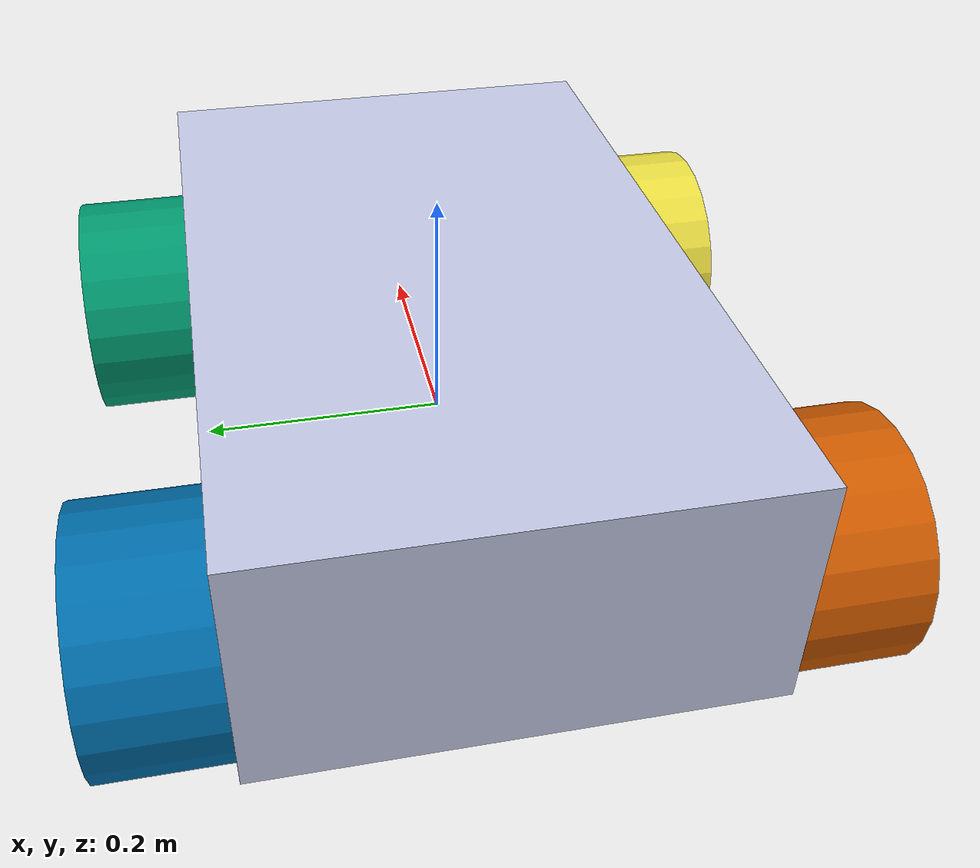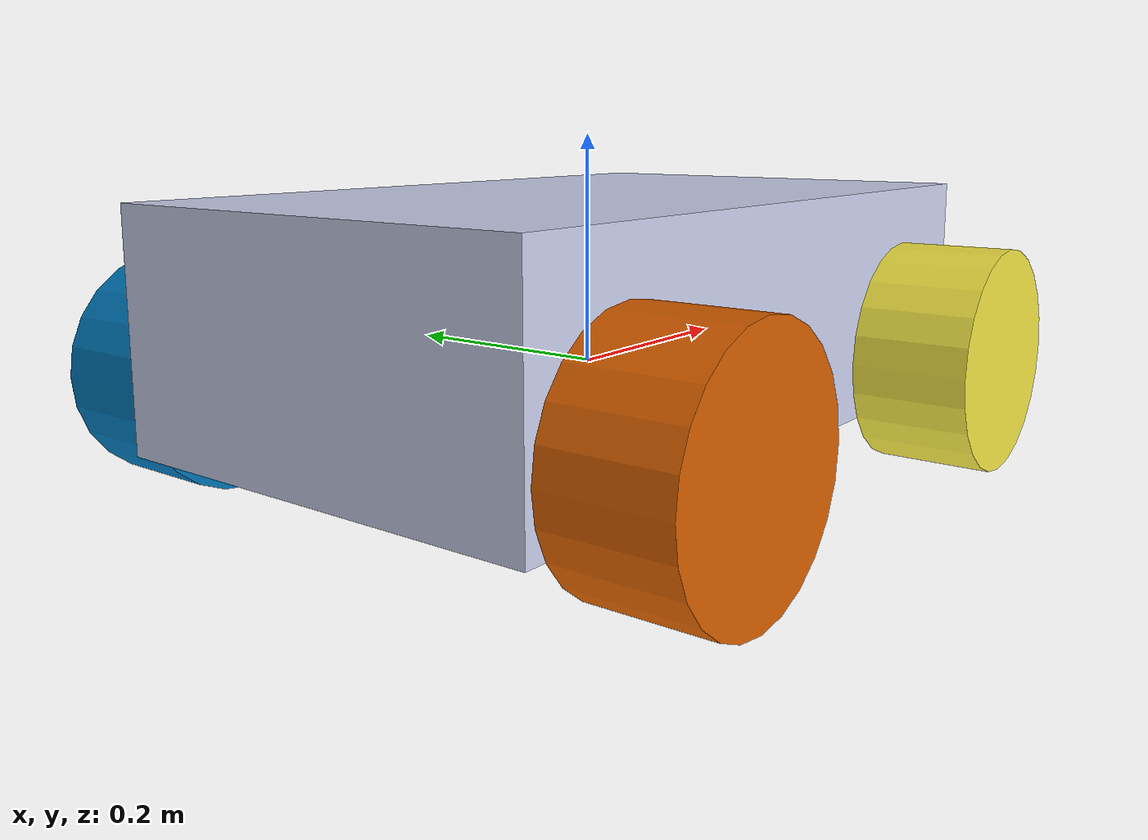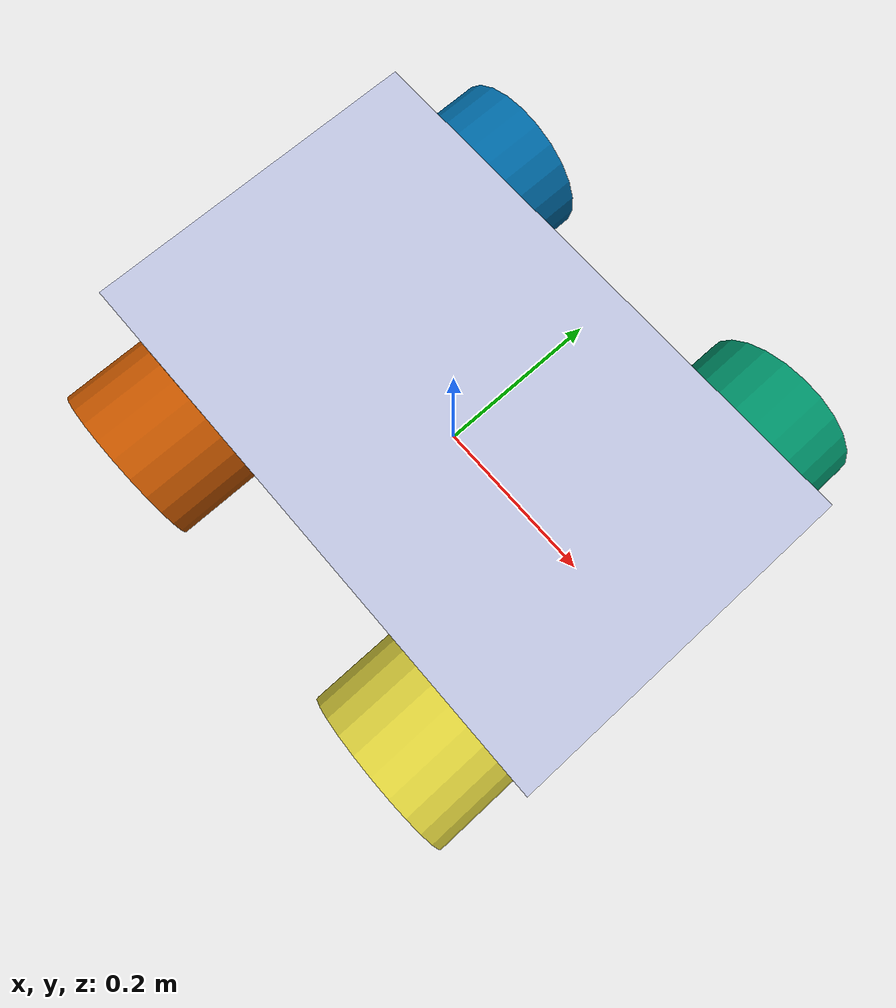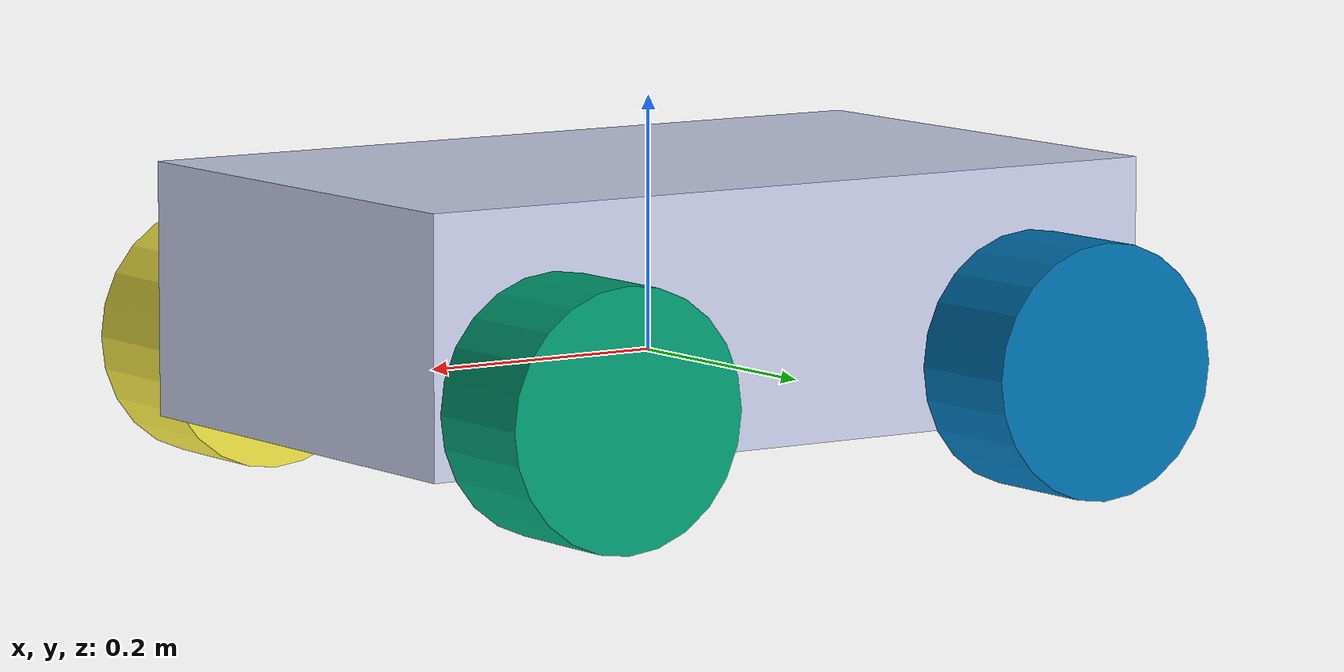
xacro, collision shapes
<?xml version="1.0"?>
<robot xmlns:xacro="http://ros.org/wiki/xacro">

    <xacro:include filename="macros.xacro"/>

    <link name="base_link">

    </link>

    <!-- CHASSIS -->

    <joint name="chassis_joint" type="fixed">
        <parent link="base_link"/>
        <child link="chassis"/>
        <origin xyz="0 0 0"/>
    </joint>

    <link name="chassis">
        <visual>
            <origin xyz="0 0 0" rpy="1.5707963267949 0 3.14"/>
            <geometry>
                <mesh filename="file:///$(find robot_description)/meshes/base/robot_base.stl"/>
            </geometry>
            <material name="">
                <color rgba="0.79216 0.81961 0.93333 1"/>
            </material>
        </visual>
        <collision>
            <origin xyz="0 0 0.05" rpy="1.5707963267949 0 3.14"/>
            <geometry>
                <box size="0.650 0.200 0.400"/>
            </geometry>
        </collision>
        <xacro:inertial_box mass="47" x="0.650" y="0.200" z="0.400">
            <origin xyz="0 0 0.05" rpy="0 0 0"/>
        </xacro:inertial_box>
    </link>

    <!-- WHEELS -->
    <!-- Fron left wheel -->
    <joint name="front_left_wheel_joint" type="continuous">
        <axis xyz="0 0 1"/>
        <parent link ="base_link"/>
        <child link ="front_left_wheel"/>
        <origin rpy ="${-pi/2} 0 0" xyz= "0.220 0.250 0"/>
    </joint>

    <link name="front_left_wheel">
        <visual>
            <origin xyz="0 0 0" rpy="0 0 0" />
            <geometry>
                <mesh filename="file:///$(find robot_description)/meshes/base/wheel.stl" />
            </geometry>
        </visual>
        <collision>
            <origin xyz="0 0 0" rpy="0 0 0" />
            <geometry>
                <cylinder radius="0.1" length="0.1"/>
            </geometry>
        </collision>
        <xacro:inertial_cylinder mass="2" length="0.1" radius="0.1">
            <origin xyz="0 0 0" rpy="0 0 0"/>
        </xacro:inertial_cylinder>
    </link>

  <!-- Front right wheel -->
    <link name="front_right_wheel">
        <visual>
            <origin xyz="0 0 0" rpy="0 0 0" />
            <geometry>
                <mesh filename="file:///$(find robot_description)/meshes/base/wheel.stl" />
            </geometry>
        </visual>
        <collision>
            <origin xyz="0 0 0" rpy="0 0 0" />
            <geometry>
                <cylinder radius="0.1" length="0.1"/>
            </geometry>
        </collision>
        <xacro:inertial_cylinder mass="2" length="0.1" radius="0.1">
            <origin xyz="0 0 0" rpy="0 0 0"/>
        </xacro:inertial_cylinder>
    </link>

    <joint name="front_right_wheel_joint" type="continuous">
        <axis xyz="0 0 -1"/>
        <limit effort="1" velocity="1"/>
        <parent link ="base_link"/>
        <child link ="front_right_wheel"/>
        <origin rpy ="${pi/2} 0 0" xyz= "0.220 -0.250 0"/>
    </joint>

  <!-- Rear left wheel -->
    <link name="rear_left_wheel">
        <visual>
            <origin xyz="0 0 0" rpy="0 0 0" />
            <geometry>
                <mesh filename="file:///$(find robot_description)/meshes/base/wheel.stl" />
            </geometry>
        </visual>
        <collision>
            <origin xyz="0 0 0" rpy="0 0 0" />
            <geometry>
                <cylinder radius="0.1" length="0.1"/>
            </geometry>
        </collision>
        <xacro:inertial_cylinder mass="2" length="0.1" radius="0.1">
            <origin xyz="0 0 0" rpy="0 0 0"/>
        </xacro:inertial_cylinder>
    </link>

    <joint name="rear_left_wheel_joint" type="continuous">
        <axis xyz="0 0 1"/>
        <limit effort="1" velocity="1"/>
        <parent link ="base_link"/>
        <child link ="rear_left_wheel"/>
        <origin rpy ="${-pi/2} 0 0" xyz= "-0.220 0.250 0"/>
  </joint>

  <!-- Rear right wheel -->
    <link name="rear_right_wheel">
        <visual>
            <origin xyz="0 0 0" rpy="0 0 0" />
            <geometry>
                <mesh filename="file:///$(find robot_description)/meshes/base/wheel.stl" />
            </geometry>
        </visual>
        <collision>
            <origin xyz="0 0 0" rpy="0 0 0" />
            <geometry>
                <cylinder radius="0.1" length="0.1"/>
            </geometry>
        </collision>
        <xacro:inertial_cylinder mass="2" length="0.1" radius="0.1">
            <origin xyz="0 0 0" rpy="0 0 0"/>
        </xacro:inertial_cylinder>
    </link>

    <joint name="rear_right_wheel_joint" type="continuous">
        <axis xyz="0 0 -1"/>
        <limit effort="1" velocity="1"/>
        <parent link ="base_link"/>
        <child link ="rear_right_wheel"/>
        <origin rpy ="${pi/2} 0 0" xyz= "-0.220 -0.250 0"/>
    </joint>

    <!-- TRANSMISSIONS -->

    <!-- FRICTIONS -->

</robot>

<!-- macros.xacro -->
<robot xmlns:xacro="http://www.ros.org/wiki/xacro">

<!-- Macros para las INERCIAS -->
<xacro:macro name="inertial_box" params="mass x y z *origin">
    <inertial>
        <xacro:insert_block name="origin"/>
        <mass value="${mass}" />
        <inertia ixx="${(1/12) * mass * (y*y+z*z)}" ixy="0.0" ixz="0.0"
                iyy="${(1/12) * mass * (x*x+z*z)}" iyz="0.0"
                izz="${(1/12) * mass * (x*x+y*y)}" />
    </inertial>
</xacro:macro>

<xacro:macro name="inertial_cylinder" params="mass length radius *origin">
    <inertial>
        <xacro:insert_block name="origin"/>
        <mass value="${mass}" />
        <inertia ixx="${(1/12) * mass * (3*radius*radius + length*length)}" ixy="0.0" ixz="0.0"
                iyy="${(1/12) * mass * (3*radius*radius + length*length)}" iyz="0.0"
                izz="${(1/2) * mass * (radius*radius)}" />
    </inertial>
</xacro:macro>

<!-- Macro para las TRANSMISIONES-->

</robot>
